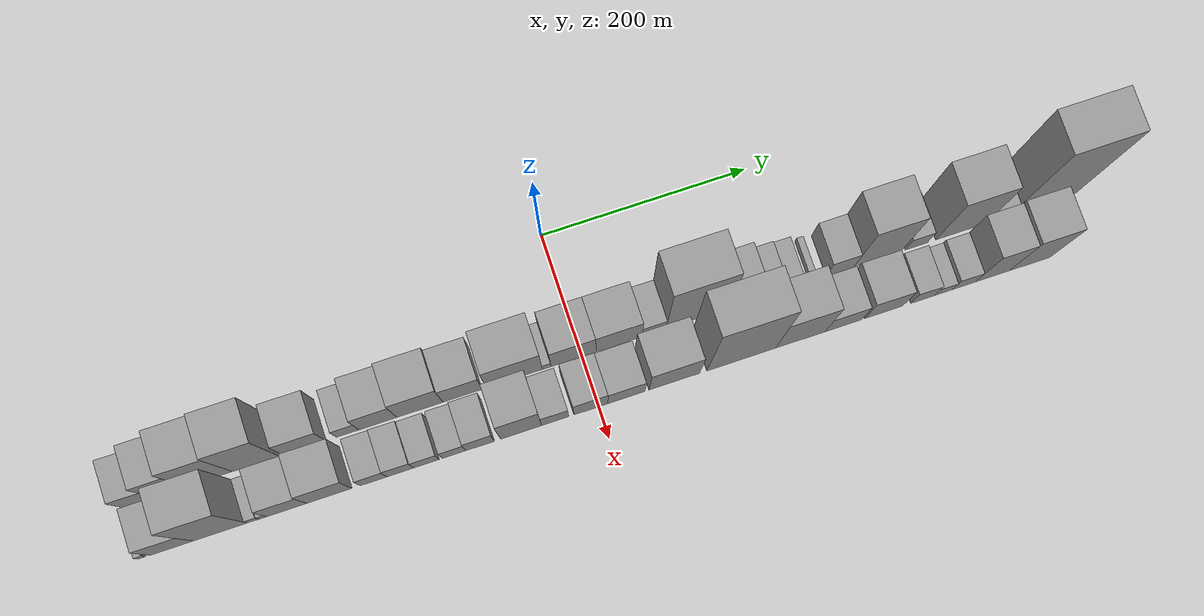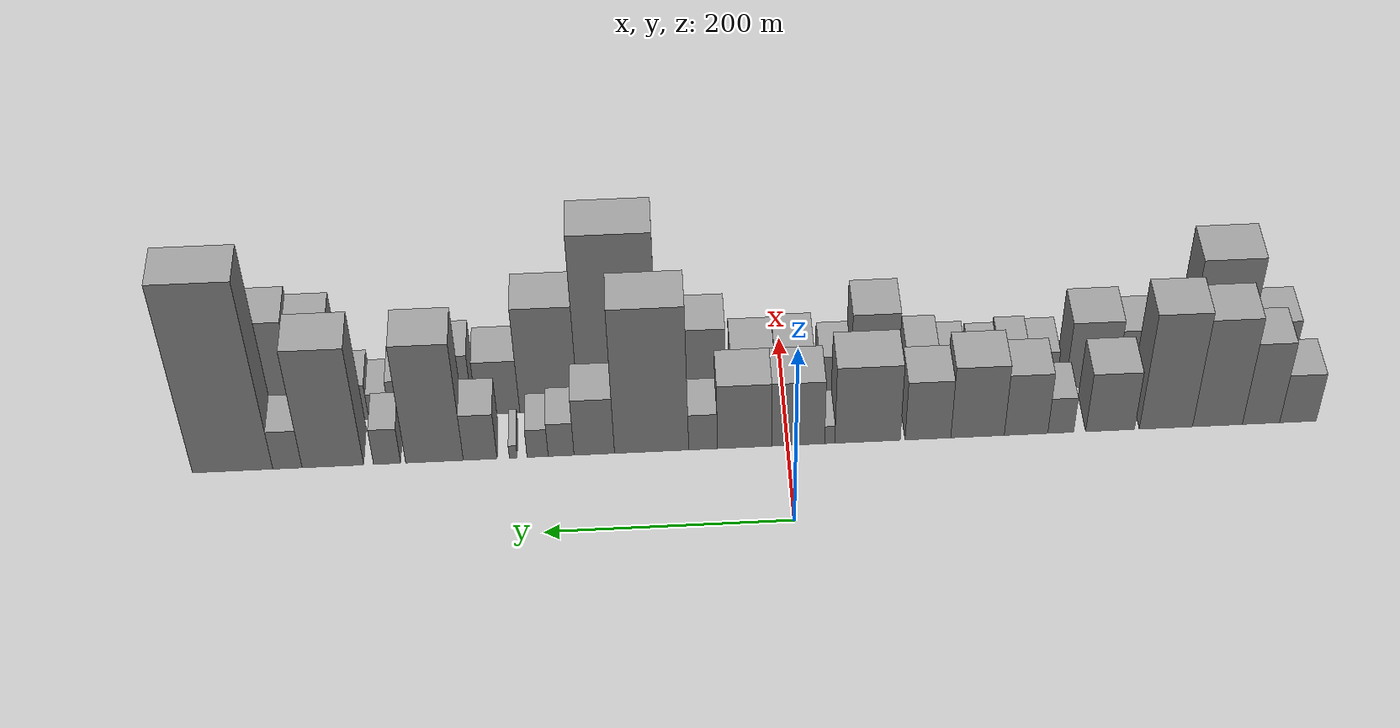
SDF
<sdf version="1.6">
 <world name="default">
  <scene>
   <sky><clouds><speed>12</speed></clouds></sky>
   <ambient>0.4 0.4 0.4 1</ambient>
   <background>0.7 0.7 0.7 1</background>
   <shadows>1</shadows>
  </scene>
  <gravity>0 0 -9.8066</gravity>
  <magnetic_field>6e-06 2.3e-05 -4.2e-05</magnetic_field>
  <physics default="0" name="default_physics" type="ode">
   <ode>
    <solver>
     <type>quick</type>
     <iters>10</iters>
     <sor>1.0</sor>
     <use_dynamic_moi_rescaling>0</use_dynamic_moi_rescaling>
    </solver>
    <constraints>
     <cfm>0</cfm>
     <erp>0.2</erp>
     <contact_max_correcting_vel>100</contact_max_correcting_vel>
     <contact_surface_layer>0.001</contact_surface_layer>
    </constraints>
   </ode>
   <max_step_size>0.004</max_step_size>
   <real_time_factor>1</real_time_factor>
   <real_time_update_rate>250</real_time_update_rate>
  </physics>
  <light name="sun" type="directional">
   <pose>0 0 10 0 0 0</pose>
   <diffuse>0.8 0.8 0.8 1</diffuse>
   <specular>0.2 0.2 0.2 1</specular>
   <attenuation>
    <range>1000</range>
    <constant>0.9</constant>
    <linear>0.01</linear>
    <quadratic>0.001</quadratic>
   </attenuation>
   <direction>-0.5 0.1 -0.9</direction>
  </light>
  <model name="building_1">
   <static>1</static>
   <pose>100.0000 -422.6857 0 0.000000 0.000000 0.000000</pose>
   <link name="link">
    <pose>0 0 28.50 0 0 0</pose>
    <collision name="collision"><geometry><box><size>40.0000 30.6286 57.0000</size></box></geometry></collision>
    <visual name="visual">
     <cast_shadows>0</cast_shadows>
     <geometry><box><size>40.0000 30.6286 57.0000</size></box></geometry>
     <material>
      <script>
       <uri>model://grey_wall/materials/scripts</uri>
       <uri>model://grey_wall/materials/textures</uri>
       <name>vrc/grey_wall</name>
      </script>
     </material>
    </visual>
   </link>
  </model>
  <model name="building_2">
   <static>1</static>
   <pose>100.0000 -391.8067 0 0.000000 0.000000 0.000000</pose>
   <link name="link">
    <pose>0 0 48.00 0 0 0</pose>
    <collision name="collision"><geometry><box><size>40.0000 31.1294 96.0000</size></box></geometry></collision>
    <visual name="visual">
     <cast_shadows>0</cast_shadows>
     <geometry><box><size>40.0000 31.1294 96.0000</size></box></geometry>
     <material>
      <script>
       <uri>model://grey_wall/materials/scripts</uri>
       <uri>model://grey_wall/materials/textures</uri>
       <name>vrc/grey_wall</name>
      </script>
     </material>
    </visual>
   </link>
  </model>
  <model name="building_3">
   <static>1</static>
   <pose>100.0000 -355.4414 0 0.000000 0.000000 0.000000</pose>
   <link name="link">
    <pose>0 0 63.00 0 0 0</pose>
    <collision name="collision"><geometry><box><size>40.0000 41.6011 126.0000</size></box></geometry></collision>
    <visual name="visual">
     <cast_shadows>0</cast_shadows>
     <geometry><box><size>40.0000 41.6011 126.0000</size></box></geometry>
     <material>
      <script>
       <uri>model://grey_wall/materials/scripts</uri>
       <uri>model://grey_wall/materials/textures</uri>
       <name>vrc/grey_wall</name>
      </script>
     </material>
    </visual>
   </link>
  </model>
  <model name="building_4">
   <static>1</static>
   <pose>100.0000 -312.4652 0 0.000000 0.000000 0.000000</pose>
   <link name="link">
    <pose>0 0 67.50 0 0 0</pose>
    <collision name="collision"><geometry><box><size>40.0000 44.3513 135.0000</size></box></geometry></collision>
    <visual name="visual">
     <cast_shadows>0</cast_shadows>
     <geometry><box><size>40.0000 44.3513 135.0000</size></box></geometry>
     <material>
      <script>
       <uri>model://grey_wall/materials/scripts</uri>
       <uri>model://grey_wall/materials/textures</uri>
       <name>vrc/grey_wall</name>
      </script>
     </material>
    </visual>
   </link>
  </model>
  <model name="building_5">
   <static>1</static>
   <pose>100.0000 -265.9892 0 0.000000 0.000000 0.000000</pose>
   <link name="link">
    <pose>0 0 34.50 0 0 0</pose>
    <collision name="collision"><geometry><box><size>40.0000 40.6008 69.0000</size></box></geometry></collision>
    <visual name="visual">
     <cast_shadows>0</cast_shadows>
     <geometry><box><size>40.0000 40.6008 69.0000</size></box></geometry>
     <material>
      <script>
       <uri>model://grey_wall/materials/scripts</uri>
       <uri>model://grey_wall/materials/textures</uri>
       <name>vrc/grey_wall</name>
      </script>
     </material>
    </visual>
   </link>
  </model>
  <model name="building_6">
   <static>1</static>
   <pose>100.0000 -224.9638 0 0.000000 0.000000 0.000000</pose>
   <link name="link">
    <pose>0 0 21.00 0 0 0</pose>
    <collision name="collision"><geometry><box><size>40.0000 21.4500 42.0000</size></box></geometry></collision>
    <visual name="visual">
     <cast_shadows>0</cast_shadows>
     <geometry><box><size>40.0000 21.4500 42.0000</size></box></geometry>
     <material>
      <script>
       <uri>model://grey_wall/materials/scripts</uri>
       <uri>model://grey_wall/materials/textures</uri>
       <name>vrc/grey_wall</name>
      </script>
     </material>
    </visual>
   </link>
  </model>
  <model name="building_7">
   <static>1</static>
   <pose>100.0000 -196.2019 0 0.000000 0.000000 0.000000</pose>
   <link name="link">
    <pose>0 0 36.00 0 0 0</pose>
    <collision name="collision"><geometry><box><size>40.0000 36.0739 72.0000</size></box></geometry></collision>
    <visual name="visual">
     <cast_shadows>0</cast_shadows>
     <geometry><box><size>40.0000 36.0739 72.0000</size></box></geometry>
     <material>
      <script>
       <uri>model://grey_wall/materials/scripts</uri>
       <uri>model://grey_wall/materials/textures</uri>
       <name>vrc/grey_wall</name>
      </script>
     </material>
    </visual>
   </link>
  </model>
  <model name="building_8">
   <static>1</static>
   <pose>100.0000 -155.9958 0 0.000000 0.000000 0.000000</pose>
   <link name="link">
    <pose>0 0 42.00 0 0 0</pose>
    <collision name="collision"><geometry><box><size>40.0000 44.3383 84.0000</size></box></geometry></collision>
    <visual name="visual">
     <cast_shadows>0</cast_shadows>
     <geometry><box><size>40.0000 44.3383 84.0000</size></box></geometry>
     <material>
      <script>
       <uri>model://grey_wall/materials/scripts</uri>
       <uri>model://grey_wall/materials/textures</uri>
       <name>vrc/grey_wall</name>
      </script>
     </material>
    </visual>
   </link>
  </model>
  <model name="building_9">
   <static>1</static>
   <pose>100.0000 -114.9520 0 0.000000 0.000000 0.000000</pose>
   <link name="link">
    <pose>0 0 34.50 0 0 0</pose>
    <collision name="collision"><geometry><box><size>40.0000 37.7493 69.0000</size></box></geometry></collision>
    <visual name="visual">
     <cast_shadows>0</cast_shadows>
     <geometry><box><size>40.0000 37.7493 69.0000</size></box></geometry>
     <material>
      <script>
       <uri>model://grey_wall/materials/scripts</uri>
       <uri>model://grey_wall/materials/textures</uri>
       <name>vrc/grey_wall</name>
      </script>
     </material>
    </visual>
   </link>
  </model>
  <model name="building_10">
   <static>1</static>
   <pose>100.0000 -65.1110 0 0.000000 0.000000 0.000000</pose>
   <link name="link">
    <pose>0 0 45.00 0 0 0</pose>
    <collision name="collision"><geometry><box><size>40.0000 53.9326 90.0000</size></box></geometry></collision>
    <visual name="visual">
     <cast_shadows>0</cast_shadows>
     <geometry><box><size>40.0000 53.9326 90.0000</size></box></geometry>
     <material>
      <script>
       <uri>model://grey_wall/materials/scripts</uri>
       <uri>model://grey_wall/materials/textures</uri>
       <name>vrc/grey_wall</name>
      </script>
     </material>
    </visual>
   </link>
  </model>
  <model name="building_11">
   <static>1</static>
   <pose>100.0000 -33.9370 0 0.000000 0.000000 0.000000</pose>
   <link name="link">
    <pose>0 0 10.50 0 0 0</pose>
    <collision name="collision"><geometry><box><size>40.0000 8.4154 21.0000</size></box></geometry></collision>
    <visual name="visual">
     <cast_shadows>0</cast_shadows>
     <geometry><box><size>40.0000 8.4154 21.0000</size></box></geometry>
     <material>
      <script>
       <uri>model://grey_wall/materials/scripts</uri>
       <uri>model://grey_wall/materials/textures</uri>
       <name>vrc/grey_wall</name>
      </script>
     </material>
    </visual>
   </link>
  </model>
  <model name="building_12">
   <static>1</static>
   <pose>100.0000 -7.9992 0 0.000000 0.000000 0.000000</pose>
   <link name="link">
    <pose>0 0 37.50 0 0 0</pose>
    <collision name="collision"><geometry><box><size>40.0000 43.4603 75.0000</size></box></geometry></collision>
    <visual name="visual">
     <cast_shadows>0</cast_shadows>
     <geometry><box><size>40.0000 43.4603 75.0000</size></box></geometry>
     <material>
      <script>
       <uri>model://grey_wall/materials/scripts</uri>
       <uri>model://grey_wall/materials/textures</uri>
       <name>vrc/grey_wall</name>
      </script>
     </material>
    </visual>
   </link>
  </model>
  <model name="building_13">
   <static>1</static>
   <pose>100.0000 35.9980 0 0.000000 0.000000 0.000000</pose>
   <link name="link">
    <pose>0 0 37.50 0 0 0</pose>
    <collision name="collision"><geometry><box><size>40.0000 44.5341 75.0000</size></box></geometry></collision>
    <visual name="visual">
     <cast_shadows>0</cast_shadows>
     <geometry><box><size>40.0000 44.5341 75.0000</size></box></geometry>
     <material>
      <script>
       <uri>model://grey_wall/materials/scripts</uri>
       <uri>model://grey_wall/materials/textures</uri>
       <name>vrc/grey_wall</name>
      </script>
     </material>
    </visual>
   </link>
  </model>
  <model name="building_14">
   <static>1</static>
   <pose>100.0000 70.0468 0 0.000000 0.000000 0.000000</pose>
   <link name="link">
    <pose>0 0 21.00 0 0 0</pose>
    <collision name="collision"><geometry><box><size>40.0000 23.5636 42.0000</size></box></geometry></collision>
    <visual name="visual">
     <cast_shadows>0</cast_shadows>
     <geometry><box><size>40.0000 23.5636 42.0000</size></box></geometry>
     <material>
      <script>
       <uri>model://grey_wall/materials/scripts</uri>
       <uri>model://grey_wall/materials/textures</uri>
       <name>vrc/grey_wall</name>
      </script>
     </material>
    </visual>
   </link>
  </model>
  <model name="building_15">
   <static>1</static>
   <pose>100.0000 112.2088 0 0.000000 0.000000 0.000000</pose>
   <link name="link">
    <pose>0 0 84.00 0 0 0</pose>
    <collision name="collision"><geometry><box><size>40.0000 60.7604 168.0000</size></box></geometry></collision>
    <visual name="visual">
     <cast_shadows>0</cast_shadows>
     <geometry><box><size>40.0000 60.7604 168.0000</size></box></geometry>
     <material>
      <script>
       <uri>model://grey_wall/materials/scripts</uri>
       <uri>model://grey_wall/materials/textures</uri>
       <name>vrc/grey_wall</name>
      </script>
     </material>
    </visual>
   </link>
  </model>
  <model name="building_16">
   <static>1</static>
   <pose>100.0000 159.1093 0 0.000000 0.000000 0.000000</pose>
   <link name="link">
    <pose>0 0 33.00 0 0 0</pose>
    <collision name="collision"><geometry><box><size>40.0000 33.0407 66.0000</size></box></geometry></collision>
    <visual name="visual">
     <cast_shadows>0</cast_shadows>
     <geometry><box><size>40.0000 33.0407 66.0000</size></box></geometry>
     <material>
      <script>
       <uri>model://grey_wall/materials/scripts</uri>
       <uri>model://grey_wall/materials/textures</uri>
       <name>vrc/grey_wall</name>
      </script>
     </material>
    </visual>
   </link>
  </model>
  <model name="building_17">
   <static>1</static>
   <pose>100.0000 186.1678 0 0.000000 0.000000 0.000000</pose>
   <link name="link">
    <pose>0 0 19.50 0 0 0</pose>
    <collision name="collision"><geometry><box><size>40.0000 21.0763 39.0000</size></box></geometry></collision>
    <visual name="visual">
     <cast_shadows>0</cast_shadows>
     <geometry><box><size>40.0000 21.0763 39.0000</size></box></geometry>
     <material>
      <script>
       <uri>model://grey_wall/materials/scripts</uri>
       <uri>model://grey_wall/materials/textures</uri>
       <name>vrc/grey_wall</name>
      </script>
     </material>
    </visual>
   </link>
  </model>
  <model name="building_18">
   <static>1</static>
   <pose>100.0000 205.3171 0 0.000000 0.000000 0.000000</pose>
   <link name="link">
    <pose>0 0 16.50 0 0 0</pose>
    <collision name="collision"><geometry><box><size>40.0000 17.2223 33.0000</size></box></geometry></collision>
    <visual name="visual">
     <cast_shadows>0</cast_shadows>
     <geometry><box><size>40.0000 17.2223 33.0000</size></box></geometry>
     <material>
      <script>
       <uri>model://grey_wall/materials/scripts</uri>
       <uri>model://grey_wall/materials/textures</uri>
       <name>vrc/grey_wall</name>
      </script>
     </material>
    </visual>
   </link>
  </model>
  <model name="building_19">
   <static>1</static>
   <pose>100.0000 225.1325 0 0.000000 0.000000 0.000000</pose>
   <link name="link">
    <pose>0 0 7.50 0 0 0</pose>
    <collision name="collision"><geometry><box><size>40.0000 6.4085 15.0000</size></box></geometry></collision>
    <visual name="visual">
     <cast_shadows>0</cast_shadows>
     <geometry><box><size>40.0000 6.4085 15.0000</size></box></geometry>
     <material>
      <script>
       <uri>model://grey_wall/materials/scripts</uri>
       <uri>model://grey_wall/materials/textures</uri>
       <name>vrc/grey_wall</name>
      </script>
     </material>
    </visual>
   </link>
  </model>
  <model name="building_20">
   <static>1</static>
   <pose>100.0000 252.0898 0 0.000000 0.000000 0.000000</pose>
   <link name="link">
    <pose>0 0 27.00 0 0 0</pose>
    <collision name="collision"><geometry><box><size>40.0000 27.5061 54.0000</size></box></geometry></collision>
    <visual name="visual">
     <cast_shadows>0</cast_shadows>
     <geometry><box><size>40.0000 27.5061 54.0000</size></box></geometry>
     <material>
      <script>
       <uri>model://grey_wall/materials/scripts</uri>
       <uri>model://grey_wall/materials/textures</uri>
       <name>vrc/grey_wall</name>
      </script>
     </material>
    </visual>
   </link>
  </model>
  <model name="building_21">
   <static>1</static>
   <pose>100.0000 289.2859 0 0.000000 0.000000 0.000000</pose>
   <link name="link">
    <pose>0 0 69.00 0 0 0</pose>
    <collision name="collision"><geometry><box><size>40.0000 46.8861 138.0000</size></box></geometry></collision>
    <visual name="visual">
     <cast_shadows>0</cast_shadows>
     <geometry><box><size>40.0000 46.8861 138.0000</size></box></geometry>
     <material>
      <script>
       <uri>model://grey_wall/materials/scripts</uri>
       <uri>model://grey_wall/materials/textures</uri>
       <name>vrc/grey_wall</name>
      </script>
     </material>
    </visual>
   </link>
  </model>
  <model name="building_22">
   <static>1</static>
   <pose>100.0000 327.7128 0 0.000000 0.000000 0.000000</pose>
   <link name="link">
    <pose>0 0 21.00 0 0 0</pose>
    <collision name="collision"><geometry><box><size>40.0000 21.9676 42.0000</size></box></geometry></collision>
    <visual name="visual">
     <cast_shadows>0</cast_shadows>
     <geometry><box><size>40.0000 21.9676 42.0000</size></box></geometry>
     <material>
      <script>
       <uri>model://grey_wall/materials/scripts</uri>
       <uri>model://grey_wall/materials/textures</uri>
       <name>vrc/grey_wall</name>
      </script>
     </material>
    </visual>
   </link>
  </model>
  <model name="building_23">
   <static>1</static>
   <pose>100.0000 371.6391 0 0.000000 0.000000 0.000000</pose>
   <link name="link">
    <pose>0 0 69.00 0 0 0</pose>
    <collision name="collision"><geometry><box><size>40.0000 49.8849 138.0000</size></box></geometry></collision>
    <visual name="visual">
     <cast_shadows>0</cast_shadows>
     <geometry><box><size>40.0000 49.8849 138.0000</size></box></geometry>
     <material>
      <script>
       <uri>model://grey_wall/materials/scripts</uri>
       <uri>model://grey_wall/materials/textures</uri>
       <name>vrc/grey_wall</name>
      </script>
     </material>
    </visual>
   </link>
  </model>
  <model name="building_24">
   <static>1</static>
   <pose>100.0000 408.4185 0 0.000000 0.000000 0.000000</pose>
   <link name="link">
    <pose>0 0 22.50 0 0 0</pose>
    <collision name="collision"><geometry><box><size>40.0000 23.6740 45.0000</size></box></geometry></collision>
    <visual name="visual">
     <cast_shadows>0</cast_shadows>
     <geometry><box><size>40.0000 23.6740 45.0000</size></box></geometry>
     <material>
      <script>
       <uri>model://grey_wall/materials/scripts</uri>
       <uri>model://grey_wall/materials/textures</uri>
       <name>vrc/grey_wall</name>
      </script>
     </material>
    </visual>
   </link>
  </model>
  <model name="building_25">
   <static>1</static>
   <pose>100.0000 452.6859 0 0.000000 0.000000 0.000000</pose>
   <link name="link">
    <pose>0 0 108.00 0 0 0</pose>
    <collision name="collision"><geometry><box><size>40.0000 64.8608 216.0000</size></box></geometry></collision>
    <visual name="visual">
     <cast_shadows>0</cast_shadows>
     <geometry><box><size>40.0000 64.8608 216.0000</size></box></geometry>
     <material>
      <script>
       <uri>model://grey_wall/materials/scripts</uri>
       <uri>model://grey_wall/materials/textures</uri>
       <name>vrc/grey_wall</name>
      </script>
     </material>
    </visual>
   </link>
  </model>
  <model name="building_26">
   <static>1</static>
   <pose>149.0000 -434.2724 0 0.000000 0.000000 0.000000</pose>
   <link name="link">
    <pose>0 0 9.00 0 0 0</pose>
    <collision name="collision"><geometry><box><size>40.0000 7.4552 18.0000</size></box></geometry></collision>
    <visual name="visual">
     <cast_shadows>0</cast_shadows>
     <geometry><box><size>40.0000 7.4552 18.0000</size></box></geometry>
     <material>
      <script>
       <uri>model://grey_wall/materials/scripts</uri>
       <uri>model://grey_wall/materials/textures</uri>
       <name>vrc/grey_wall</name>
      </script>
     </material>
    </visual>
   </link>
  </model>
  <model name="building_27">
   <static>1</static>
   <pose>149.0000 -406.1737 0 0.000000 0.000000 0.000000</pose>
   <link name="link">
    <pose>0 0 34.50 0 0 0</pose>
    <collision name="collision"><geometry><box><size>40.0000 40.7422 69.0000</size></box></geometry></collision>
    <visual name="visual">
     <cast_shadows>0</cast_shadows>
     <geometry><box><size>40.0000 40.7422 69.0000</size></box></geometry>
     <material>
      <script>
       <uri>model://grey_wall/materials/scripts</uri>
       <uri>model://grey_wall/materials/textures</uri>
       <name>vrc/grey_wall</name>
      </script>
     </material>
    </visual>
   </link>
  </model>
  <model name="building_28">
   <static>1</static>
   <pose>149.0000 -360.2219 0 0.000000 0.000000 0.000000</pose>
   <link name="link">
    <pose>0 0 72.00 0 0 0</pose>
    <collision name="collision"><geometry><box><size>40.0000 51.1612 144.0000</size></box></geometry></collision>
    <visual name="visual">
     <cast_shadows>0</cast_shadows>
     <geometry><box><size>40.0000 51.1612 144.0000</size></box></geometry>
     <material>
      <script>
       <uri>model://grey_wall/materials/scripts</uri>
       <uri>model://grey_wall/materials/textures</uri>
       <name>vrc/grey_wall</name>
      </script>
     </material>
    </visual>
   </link>
  </model>
  <model name="building_29">
   <static>1</static>
   <pose>149.0000 -329.3915 0 0.000000 0.000000 0.000000</pose>
   <link name="link">
    <pose>0 0 10.50 0 0 0</pose>
    <collision name="collision"><geometry><box><size>40.0000 10.4996 21.0000</size></box></geometry></collision>
    <visual name="visual">
     <cast_shadows>0</cast_shadows>
     <geometry><box><size>40.0000 10.4996 21.0000</size></box></geometry>
     <material>
      <script>
       <uri>model://grey_wall/materials/scripts</uri>
       <uri>model://grey_wall/materials/textures</uri>
       <name>vrc/grey_wall</name>
      </script>
     </material>
    </visual>
   </link>
  </model>
  <model name="building_30">
   <static>1</static>
   <pose>149.0000 -320.4100 0 0.000000 0.000000 0.000000</pose>
   <link name="link">
    <pose>0 0 9.00 0 0 0</pose>
    <collision name="collision"><geometry><box><size>40.0000 7.4635 18.0000</size></box></geometry></collision>
    <visual name="visual">
     <cast_shadows>0</cast_shadows>
     <geometry><box><size>40.0000 7.4635 18.0000</size></box></geometry>
     <material>
      <script>
       <uri>model://grey_wall/materials/scripts</uri>
       <uri>model://grey_wall/materials/textures</uri>
       <name>vrc/grey_wall</name>
      </script>
     </material>
    </visual>
   </link>
  </model>
  <model name="building_31">
   <static>1</static>
   <pose>149.0000 -297.7112 0 0.000000 0.000000 0.000000</pose>
   <link name="link">
    <pose>0 0 33.00 0 0 0</pose>
    <collision name="collision"><geometry><box><size>40.0000 37.9340 66.0000</size></box></geometry></collision>
    <visual name="visual">
     <cast_shadows>0</cast_shadows>
     <geometry><box><size>40.0000 37.9340 66.0000</size></box></geometry>
     <material>
      <script>
       <uri>model://grey_wall/materials/scripts</uri>
       <uri>model://grey_wall/materials/textures</uri>
       <name>vrc/grey_wall</name>
      </script>
     </material>
    </visual>
   </link>
  </model>
  <model name="building_32">
   <static>1</static>
   <pose>149.0000 -257.3975 0 0.000000 0.000000 0.000000</pose>
   <link name="link">
    <pose>0 0 39.00 0 0 0</pose>
    <collision name="collision"><geometry><box><size>40.0000 42.6934 78.0000</size></box></geometry></collision>
    <visual name="visual">
     <cast_shadows>0</cast_shadows>
     <geometry><box><size>40.0000 42.6934 78.0000</size></box></geometry>
     <material>
      <script>
       <uri>model://grey_wall/materials/scripts</uri>
       <uri>model://grey_wall/materials/textures</uri>
       <name>vrc/grey_wall</name>
      </script>
     </material>
    </visual>
   </link>
  </model>
  <model name="building_33">
   <static>1</static>
   <pose>149.0000 -215.3264 0 0.000000 0.000000 0.000000</pose>
   <link name="link">
    <pose>0 0 22.50 0 0 0</pose>
    <collision name="collision"><geometry><box><size>40.0000 25.4488 45.0000</size></box></geometry></collision>
    <visual name="visual">
     <cast_shadows>0</cast_shadows>
     <geometry><box><size>40.0000 25.4488 45.0000</size></box></geometry>
     <material>
      <script>
       <uri>model://grey_wall/materials/scripts</uri>
       <uri>model://grey_wall/materials/textures</uri>
       <name>vrc/grey_wall</name>
      </script>
     </material>
    </visual>
   </link>
  </model>
  <model name="building_34">
   <static>1</static>
   <pose>149.0000 -189.9438 0 0.000000 0.000000 0.000000</pose>
   <link name="link">
    <pose>0 0 24.00 0 0 0</pose>
    <collision name="collision"><geometry><box><size>40.0000 25.3166 48.0000</size></box></geometry></collision>
    <visual name="visual">
     <cast_shadows>0</cast_shadows>
     <geometry><box><size>40.0000 25.3166 48.0000</size></box></geometry>
     <material>
      <script>
       <uri>model://grey_wall/materials/scripts</uri>
       <uri>model://grey_wall/materials/textures</uri>
       <name>vrc/grey_wall</name>
      </script>
     </material>
    </visual>
   </link>
  </model>
  <model name="building_35">
   <static>1</static>
   <pose>149.0000 -165.1191 0 0.000000 0.000000 0.000000</pose>
   <link name="link">
    <pose>0 0 21.00 0 0 0</pose>
    <collision name="collision"><geometry><box><size>40.0000 24.3327 42.0000</size></box></geometry></collision>
    <visual name="visual">
     <cast_shadows>0</cast_shadows>
     <geometry><box><size>40.0000 24.3327 42.0000</size></box></geometry>
     <material>
      <script>
       <uri>model://grey_wall/materials/scripts</uri>
       <uri>model://grey_wall/materials/textures</uri>
       <name>vrc/grey_wall</name>
      </script>
     </material>
    </visual>
   </link>
  </model>
  <model name="building_36">
   <static>1</static>
   <pose>149.0000 -138.6496 0 0.000000 0.000000 0.000000</pose>
   <link name="link">
    <pose>0 0 22.50 0 0 0</pose>
    <collision name="collision"><geometry><box><size>40.0000 22.6065 45.0000</size></box></geometry></collision>
    <visual name="visual">
     <cast_shadows>0</cast_shadows>
     <geometry><box><size>40.0000 22.6065 45.0000</size></box></geometry>
     <material>
      <script>
       <uri>model://grey_wall/materials/scripts</uri>
       <uri>model://grey_wall/materials/textures</uri>
       <name>vrc/grey_wall</name>
      </script>
     </material>
    </visual>
   </link>
  </model>
  <model name="building_37">
   <static>1</static>
   <pose>149.0000 -113.7449 0 0.000000 0.000000 0.000000</pose>
   <link name="link">
    <pose>0 0 27.00 0 0 0</pose>
    <collision name="collision"><geometry><box><size>40.0000 27.2029 54.0000</size></box></geometry></collision>
    <visual name="visual">
     <cast_shadows>0</cast_shadows>
     <geometry><box><size>40.0000 27.2029 54.0000</size></box></geometry>
     <material>
      <script>
       <uri>model://grey_wall/materials/scripts</uri>
       <uri>model://grey_wall/materials/textures</uri>
       <name>vrc/grey_wall</name>
      </script>
     </material>
    </visual>
   </link>
  </model>
  <model name="building_38">
   <static>1</static>
   <pose>149.0000 -74.5213 0 0.000000 0.000000 0.000000</pose>
   <link name="link">
    <pose>0 0 49.50 0 0 0</pose>
    <collision name="collision"><geometry><box><size>40.0000 39.2442 99.0000</size></box></geometry></collision>
    <visual name="visual">
     <cast_shadows>0</cast_shadows>
     <geometry><box><size>40.0000 39.2442 99.0000</size></box></geometry>
     <material>
      <script>
       <uri>model://grey_wall/materials/scripts</uri>
       <uri>model://grey_wall/materials/textures</uri>
       <name>vrc/grey_wall</name>
      </script>
     </material>
    </visual>
   </link>
  </model>
  <model name="building_39">
   <static>1</static>
   <pose>149.0000 -41.8490 0 0.000000 0.000000 0.000000</pose>
   <link name="link">
    <pose>0 0 25.50 0 0 0</pose>
    <collision name="collision"><geometry><box><size>40.0000 26.1003 51.0000</size></box></geometry></collision>
    <visual name="visual">
     <cast_shadows>0</cast_shadows>
     <geometry><box><size>40.0000 26.1003 51.0000</size></box></geometry>
     <material>
      <script>
       <uri>model://grey_wall/materials/scripts</uri>
       <uri>model://grey_wall/materials/textures</uri>
       <name>vrc/grey_wall</name>
      </script>
     </material>
    </visual>
   </link>
  </model>
  <model name="building_40">
   <static>1</static>
   <pose>149.0000 -7.4325 0 0.000000 0.000000 0.000000</pose>
   <link name="link">
    <pose>0 0 31.50 0 0 0</pose>
    <collision name="collision"><geometry><box><size>40.0000 32.7328 63.0000</size></box></geometry></collision>
    <visual name="visual">
     <cast_shadows>0</cast_shadows>
     <geometry><box><size>40.0000 32.7328 63.0000</size></box></geometry>
     <material>
      <script>
       <uri>model://grey_wall/materials/scripts</uri>
       <uri>model://grey_wall/materials/textures</uri>
       <name>vrc/grey_wall</name>
      </script>
     </material>
    </visual>
   </link>
  </model>
  <model name="building_41">
   <static>1</static>
   <pose>149.0000 26.8498 0 0.000000 0.000000 0.000000</pose>
   <link name="link">
    <pose>0 0 30.00 0 0 0</pose>
    <collision name="collision"><geometry><box><size>40.0000 35.8318 60.0000</size></box></geometry></collision>
    <visual name="visual">
     <cast_shadows>0</cast_shadows>
     <geometry><box><size>40.0000 35.8318 60.0000</size></box></geometry>
     <material>
      <script>
       <uri>model://grey_wall/materials/scripts</uri>
       <uri>model://grey_wall/materials/textures</uri>
       <name>vrc/grey_wall</name>
      </script>
     </material>
    </visual>
   </link>
  </model>
  <model name="building_42">
   <static>1</static>
   <pose>149.0000 73.2628 0 0.000000 0.000000 0.000000</pose>
   <link name="link">
    <pose>0 0 45.00 0 0 0</pose>
    <collision name="collision"><geometry><box><size>40.0000 48.9942 90.0000</size></box></geometry></collision>
    <visual name="visual">
     <cast_shadows>0</cast_shadows>
     <geometry><box><size>40.0000 48.9942 90.0000</size></box></geometry>
     <material>
      <script>
       <uri>model://grey_wall/materials/scripts</uri>
       <uri>model://grey_wall/materials/textures</uri>
       <name>vrc/grey_wall</name>
      </script>
     </material>
    </visual>
   </link>
  </model>
  <model name="building_43">
   <static>1</static>
   <pose>149.0000 138.1353 0 0.000000 0.000000 0.000000</pose>
   <link name="link">
    <pose>0 0 100.50 0 0 0</pose>
    <collision name="collision"><geometry><box><size>40.0000 66.7508 201.0000</size></box></geometry></collision>
    <visual name="visual">
     <cast_shadows>0</cast_shadows>
     <geometry><box><size>40.0000 66.7508 201.0000</size></box></geometry>
     <material>
      <script>
       <uri>model://grey_wall/materials/scripts</uri>
       <uri>model://grey_wall/materials/textures</uri>
       <name>vrc/grey_wall</name>
      </script>
     </material>
    </visual>
   </link>
  </model>
  <model name="building_44">
   <static>1</static>
   <pose>149.0000 195.7876 0 0.000000 0.000000 0.000000</pose>
   <link name="link">
    <pose>0 0 61.50 0 0 0</pose>
    <collision name="collision"><geometry><box><size>40.0000 48.5537 123.0000</size></box></geometry></collision>
    <visual name="visual">
     <cast_shadows>0</cast_shadows>
     <geometry><box><size>40.0000 48.5537 123.0000</size></box></geometry>
     <material>
      <script>
       <uri>model://grey_wall/materials/scripts</uri>
       <uri>model://grey_wall/materials/textures</uri>
       <name>vrc/grey_wall</name>
      </script>
     </material>
    </visual>
   </link>
  </model>
  <model name="building_45">
   <static>1</static>
   <pose>149.0000 237.8975 0 0.000000 0.000000 0.000000</pose>
   <link name="link">
    <pose>0 0 31.50 0 0 0</pose>
    <collision name="collision"><geometry><box><size>40.0000 35.6662 63.0000</size></box></geometry></collision>
    <visual name="visual">
     <cast_shadows>0</cast_shadows>
     <geometry><box><size>40.0000 35.6662 63.0000</size></box></geometry>
     <material>
      <script>
       <uri>model://grey_wall/materials/scripts</uri>
       <uri>model://grey_wall/materials/textures</uri>
       <name>vrc/grey_wall</name>
      </script>
     </material>
    </visual>
   </link>
  </model>
  <model name="building_46">
   <static>1</static>
   <pose>149.0000 277.4249 0 0.000000 0.000000 0.000000</pose>
   <link name="link">
    <pose>0 0 36.00 0 0 0</pose>
    <collision name="collision"><geometry><box><size>40.0000 37.3885 72.0000</size></box></geometry></collision>
    <visual name="visual">
     <cast_shadows>0</cast_shadows>
     <geometry><box><size>40.0000 37.3885 72.0000</size></box></geometry>
     <material>
      <script>
       <uri>model://grey_wall/materials/scripts</uri>
       <uri>model://grey_wall/materials/textures</uri>
       <name>vrc/grey_wall</name>
      </script>
     </material>
    </visual>
   </link>
  </model>
  <model name="building_47">
   <static>1</static>
   <pose>149.0000 315.7990 0 0.000000 0.000000 0.000000</pose>
   <link name="link">
    <pose>0 0 22.50 0 0 0</pose>
    <collision name="collision"><geometry><box><size>40.0000 23.3596 45.0000</size></box></geometry></collision>
    <visual name="visual">
     <cast_shadows>0</cast_shadows>
     <geometry><box><size>40.0000 23.3596 45.0000</size></box></geometry>
     <material>
      <script>
       <uri>model://grey_wall/materials/scripts</uri>
       <uri>model://grey_wall/materials/textures</uri>
       <name>vrc/grey_wall</name>
      </script>
     </material>
    </visual>
   </link>
  </model>
  <model name="building_48">
   <static>1</static>
   <pose>149.0000 336.1444 0 0.000000 0.000000 0.000000</pose>
   <link name="link">
    <pose>0 0 15.00 0 0 0</pose>
    <collision name="collision"><geometry><box><size>40.0000 17.3313 30.0000</size></box></geometry></collision>
    <visual name="visual">
     <cast_shadows>0</cast_shadows>
     <geometry><box><size>40.0000 17.3313 30.0000</size></box></geometry>
     <material>
      <script>
       <uri>model://grey_wall/materials/scripts</uri>
       <uri>model://grey_wall/materials/textures</uri>
       <name>vrc/grey_wall</name>
      </script>
     </material>
    </visual>
   </link>
  </model>
  <model name="building_49">
   <static>1</static>
   <pose>149.0000 356.0848 0 0.000000 0.000000 0.000000</pose>
   <link name="link">
    <pose>0 0 21.00 0 0 0</pose>
    <collision name="collision"><geometry><box><size>40.0000 22.5493 42.0000</size></box></geometry></collision>
    <visual name="visual">
     <cast_shadows>0</cast_shadows>
     <geometry><box><size>40.0000 22.5493 42.0000</size></box></geometry>
     <material>
      <script>
       <uri>model://grey_wall/materials/scripts</uri>
       <uri>model://grey_wall/materials/textures</uri>
       <name>vrc/grey_wall</name>
      </script>
     </material>
    </visual>
   </link>
  </model>
  <model name="building_50">
   <static>1</static>
   <pose>149.0000 384.4124 0 0.000000 0.000000 0.000000</pose>
   <link name="link">
    <pose>0 0 55.50 0 0 0</pose>
    <collision name="collision"><geometry><box><size>40.0000 34.1058 111.0000</size></box></geometry></collision>
    <visual name="visual">
     <cast_shadows>0</cast_shadows>
     <geometry><box><size>40.0000 34.1058 111.0000</size></box></geometry>
     <material>
      <script>
       <uri>model://grey_wall/materials/scripts</uri>
       <uri>model://grey_wall/materials/textures</uri>
       <name>vrc/grey_wall</name>
      </script>
     </material>
    </visual>
   </link>
  </model>
  <model name="building_51">
   <static>1</static>
   <pose>149.0000 421.6550 0 0.000000 0.000000 0.000000</pose>
   <link name="link">
    <pose>0 0 60.00 0 0 0</pose>
    <collision name="collision"><geometry><box><size>40.0000 40.3795 120.0000</size></box></geometry></collision>
    <visual name="visual">
     <cast_shadows>0</cast_shadows>
     <geometry><box><size>40.0000 40.3795 120.0000</size></box></geometry>
     <material>
      <script>
       <uri>model://grey_wall/materials/scripts</uri>
       <uri>model://grey_wall/materials/textures</uri>
       <name>vrc/grey_wall</name>
      </script>
     </material>
    </visual>
   </link>
  </model>
 </world>
</sdf>
